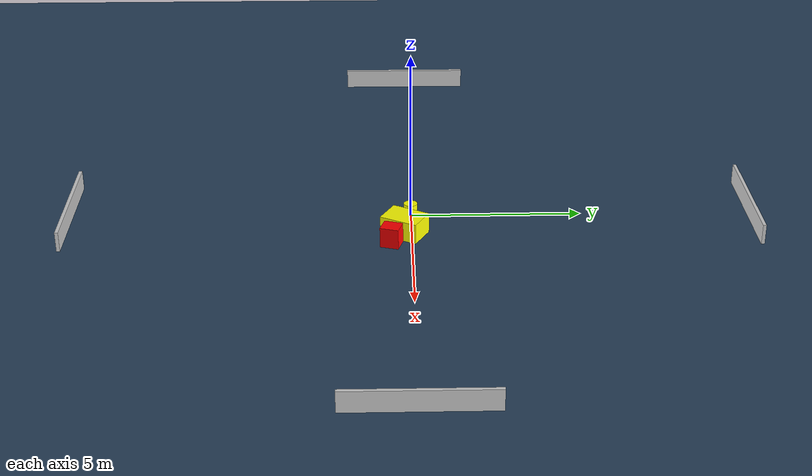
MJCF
<?xml version="1.0" ?>
<mujoco model="generated_environment">
  <option timestep="0.01" integrator="RK4" cone="elliptic"/>
  <default>
    <geom density="1"/>
  </default>
  <asset>
    <texture builtin="gradient" height="3072" name="skybox" rgb1="0.3 0.5 0.7" rgb2="0 0 0" type="skybox" width="512"/>
    <texture builtin="checker" height="300" name="groundplane" rgb1="0.2 0.3 0.4" rgb2="0.1 0.2 0.3" type="2d" width="300"/>
    <material name="groundplane" reflectance="0.2" texrepeat="5 5" texture="groundplane"/>
  </asset>
  <worldbody>
    <light dir="0 0 -1" directional="true" pos="0 0 1.5"/>
    <geom condim="3" friction="0.5 0.005 0.001" material="groundplane" name="floor" pos="0 0 0" size="0 0 0.05" type="plane"/>
    <body name="walls">
      <geom name="wall_1" condim="4" pos="-10.0 0.0 0.3" rgba="0.800000011920929 0.800000011920929 0.800000011920929 1.0" size="0.05 2.0 0.3" type="box"/>
      <geom name="wall_2" condim="4" pos="10.0 0.0 0.3" rgba="0.800000011920929 0.800000011920929 0.800000011920929 1.0" size="0.05 2.0 0.3" type="box"/>
      <geom name="wall_3" condim="4" pos="0.0 -10.0 0.3" rgba="0.800000011920929 0.800000011920929 0.800000011920929 1.0" size="2.0 0.05 0.3" type="box"/>
      <geom name="wall_4" condim="4" pos="0.0 10.0 0.3" rgba="0.800000011920929 0.800000011920929 0.800000011920929 1.0" size="2.0 0.05 0.3" type="box"/>
    </body>
    <body name="robot">
      <joint name="joint_x" type="slide" pos="0 0 0" axis="1 0 0"/>
      <joint name="joint_y" type="slide" pos="0 0 0" axis="0 1 0"/>
      <geom name="robot" type="cylinder" pos="0.0 0.0 0.2" size="0.2 0.2 0.0" mass="5.0" friction="1.0 0.005 0.0001" condim="4" rgba="1.0 1.0 0.0 1.0"/>
    </body>
    <body name="obstacle_1_movable">
      <geom name="obstacle_1_movable" condim="4" pos="1.1337620924652039 -0.19703870386035902 0.3" euler="0 0 61.31203254449433" friction="0.0 0.005 0.001" rgba="1.0 1.0 0.0 1.0" size="0.5724453598399475 0.4203215806330914 0.3" type="box" mass="0.1"/>
      <joint type="free"/>
    </body>
    <body name="obstacle_2_static">
      <geom name="obstacle_2_static" condim="4" pos="1.778070756406007 -0.584978592135026 0.3" euler="0 0 342.9993588837634" friction="0.0 0.005 0.001" rgba="1.0 0.0 0.0 1.0" size="0.24035728424682068 0.2735812312436068 0.3" type="box"/>
    </body>
  </worldbody>
  <actuator>
    <motor name="actuator_x" joint="joint_x" gear="1" ctrlrange="-1 1"/>
    <motor name="actuator_y" joint="joint_y" gear="1" ctrlrange="-1 1"/>
  </actuator>
</mujoco>
